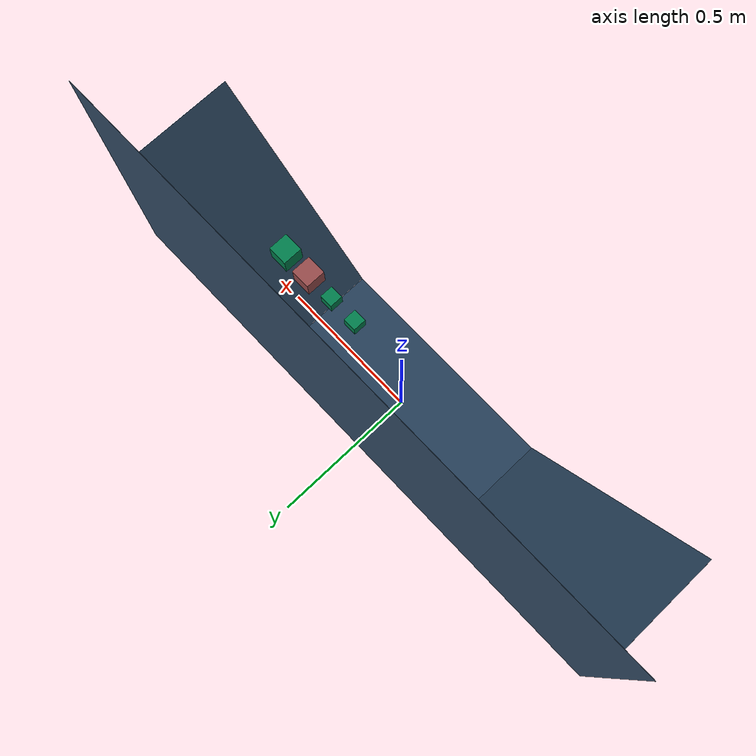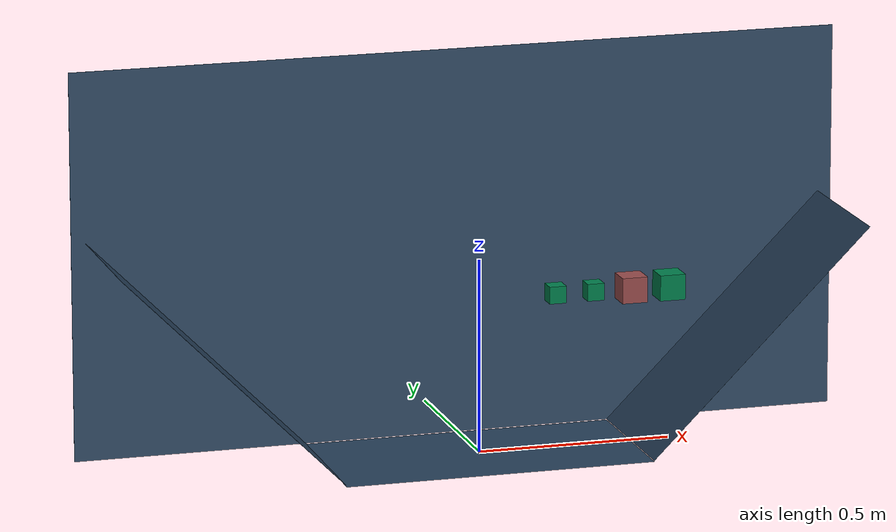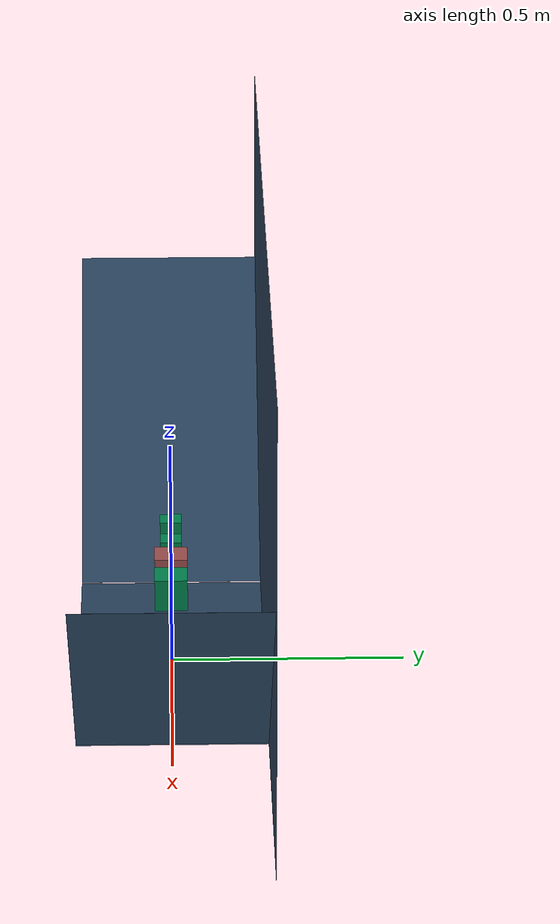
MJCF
<mujoco model="planar stacker">

  <include file="./common/visual.xml"/>
  <include file="./common/skybox.xml"/>
  <include file="./common/materials.xml"/>
  <asset>
    <texture name="background" builtin="flat" type="2d" mark="random" markrgb="1 1 1" width="800" height="800" rgb1=".2 .3 .4"/>
    <material name="background" texture="background" texrepeat="1 1" texuniform="true"/>
  </asset>

  <visual>
    <map shadowclip=".5"/>
    <quality shadowsize="2048"/>
  </visual>>

  <option timestep="0.001" cone="elliptic"/>

  <default>
    <geom friction=".7" solimp="0.9 0.97 0.001" solref=".01 1"/>
    <joint solimplimit="0 0.99 0.01" solreflimit=".005 1"/>
    <general ctrllimited="true"/>
    <tendon width="0.01"/>
    <site size=".003 .003 .003" material="site" group="3"/>

    <default class="object">
      <geom material="self_highlight"/>
    </default>

    <default class="object2">
      <geom material="target"/>
    </default>

    <default class="task">
      <site rgba="0 0 0 0"/>
    </default>

    <default class="obstacle">
      <geom material="decoration" friction="0"/>
    </default>

  </default>

  <worldbody>
    <!-- Arena -->
    <light name="light" directional="true" diffuse=".6 .6 .6" pos="0 0 1" specular=".3 .3 .3"/>
    <geom name="floor" type="plane" pos="0 0 0" size=".4 .2 10" material="grid"/>
    <geom name="wall1" type="plane" pos="-.682843 0 .282843" size=".4 .2 10" material="grid" zaxis="1 0 1"/>
    <geom name="wall2" type="plane" pos=".682843 0 .282843" size=".4 .2 10" material="grid" zaxis="-1 0 1"/>
    <geom name="background" type="plane" pos="0 .2 .5" size="1 .5 10" material="background" zaxis="0 -1 0"/>
    <camera name="fixed" pos="0 -16 .4" xyaxes="1 0 0 0 0 1" fovy="4"/>

    <!-- props -->
    <body name="box0" pos=".5 0 .4" childclass="object">
      <joint name="box0_x" type="slide" axis="1 0 0" ref=".5"/>
      <joint name="box0_z" type="slide" axis="0 0 1" ref=".4"/>
      <joint name="box0_y" type="hinge" axis="0 1 0"/>
      <geom  name="box0" type="box" size=".033 .033 .033" />
      <site  name="box0" rgba="0.1 0.1 0.1 1" type="sphere"/>
    </body>

    <body name="box1" pos=".4 0 .4" childclass="object2">
      <joint name="box1_x" type="slide" axis="1 0 0" ref=".4"/>
      <joint name="box1_z" type="slide" axis="0 0 1" ref=".4"/>
      <joint name="box1_y" type="hinge" axis="0 1 0"/>
      <geom  name="box1" type="box" size=".033 .033 .033" />
      <site  name="box1" type="sphere"/>
    </body>

    <body name="box2" pos=".3 0 .4" childclass="object">
      <joint name="box2_x" type="slide" axis="1 0 0" ref=".3"/>
      <joint name="box2_z" type="slide" axis="0 0 1" ref=".4"/>
      <joint name="box2_y" type="hinge" axis="0 1 0"/>
      <geom  name="box2" type="box" size=".022 .022 .022" />
      <site  name="box2" type="sphere"/>
    </body>

    <body name="box3" pos=".2 0 .4" childclass="object">
      <joint name="box3_x" type="slide" axis="1 0 0" ref=".2"/>
      <joint name="box3_z" type="slide" axis="0 0 1" ref=".4"/>
      <joint name="box3_y" type="hinge" axis="0 1 0"/>
      <geom  name="box3" type="box" size=".022 .022 .022" />
      <site  name="box3" type="sphere"/>
    </body>

    <!-- targets -->
  </worldbody>

</mujoco>

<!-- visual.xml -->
<mujoco>
    <visual>
        <headlight ambient=".4 .4 .4" diffuse=".8 .8 .8" specular="0.1 0.1 0.1"/>
        <map znear=".01"/>
        <quality shadowsize="2048"/>
    </visual>
</mujoco>

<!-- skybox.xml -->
<mujoco>
    <asset>
        <texture name="skybox" type="skybox" builtin="gradient" rgb1=".4 .6 .8" rgb2="0 0 0"
                 width="800" height="800" mark="random" markrgb="1 1 1"/>
    </asset>
</mujoco>

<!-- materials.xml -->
<!--
Common textures, colors and materials to be used throughout this suite. Some
materials such as xxx_highlight are activated on occurence of certain events,
for example receiving a positive reward.
-->
<mujoco>
    <asset>
        <texture name="grid" type="2d" builtin="checker" rgb1=".1 .2 .3" rgb2=".2 .3 .4" width="300" height="300" mark="edge" markrgb=".2 .3 .4"/>
        <material name="grid" texture="grid" texrepeat="1 1" texuniform="true" reflectance=".2"/>
        <material name="self" rgba=".7 .5 .3 1"/>
        <material name="self_default" rgba=".7 .5 .3 1"/>
        <material name="self_highlight" rgba="0 .5 .3 1"/>
        <material name="effector" rgba=".7 .4 .2 1"/>
        <material name="effector_default" rgba=".7 .4 .2 1"/>
        <material name="effector_highlight" rgba="0 .5 .3 1"/>
        <material name="decoration" rgba=".3 .5 .7 1"/>
        <material name="eye" rgba="0 .2 1 1"/>
        <material name="target" rgba=".6 .3 .3 1"/>
        <material name="target_default" rgba=".6 .3 .3 1"/>
        <material name="target_highlight" rgba=".6 .3 .3 .4"/>
        <material name="site" rgba=".5 .5 .5 .3"/>
    </asset>
</mujoco>
